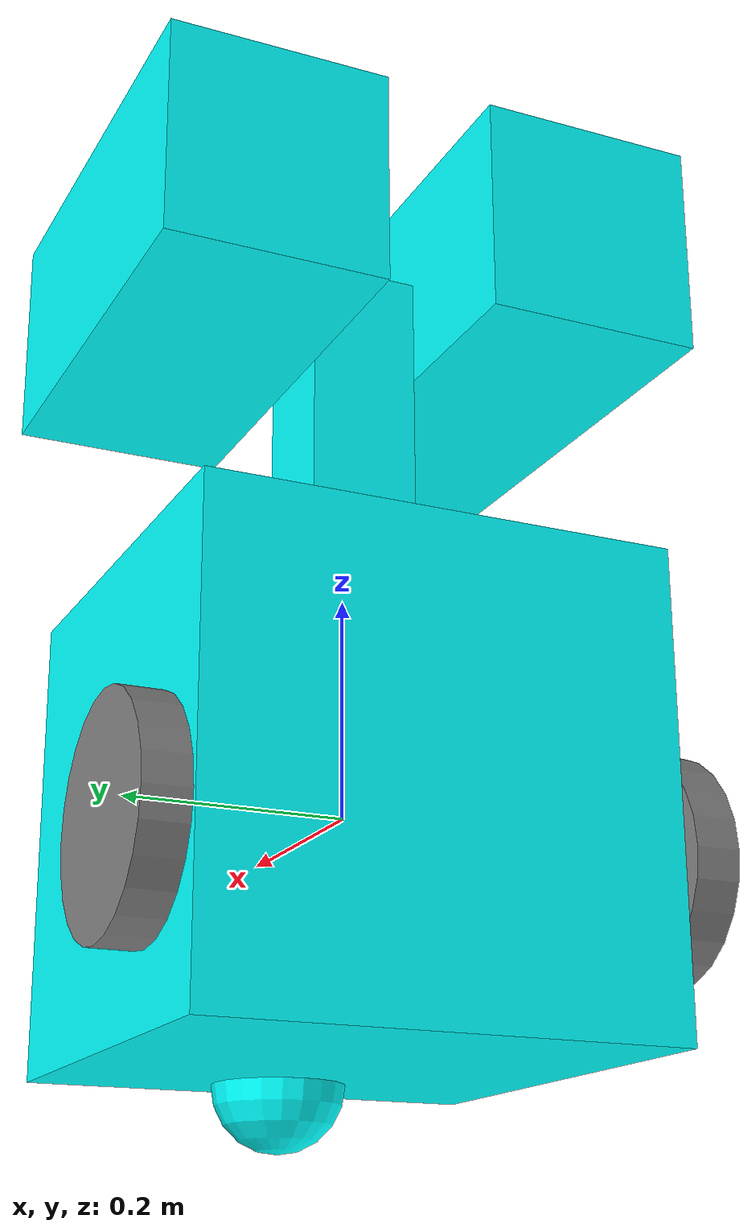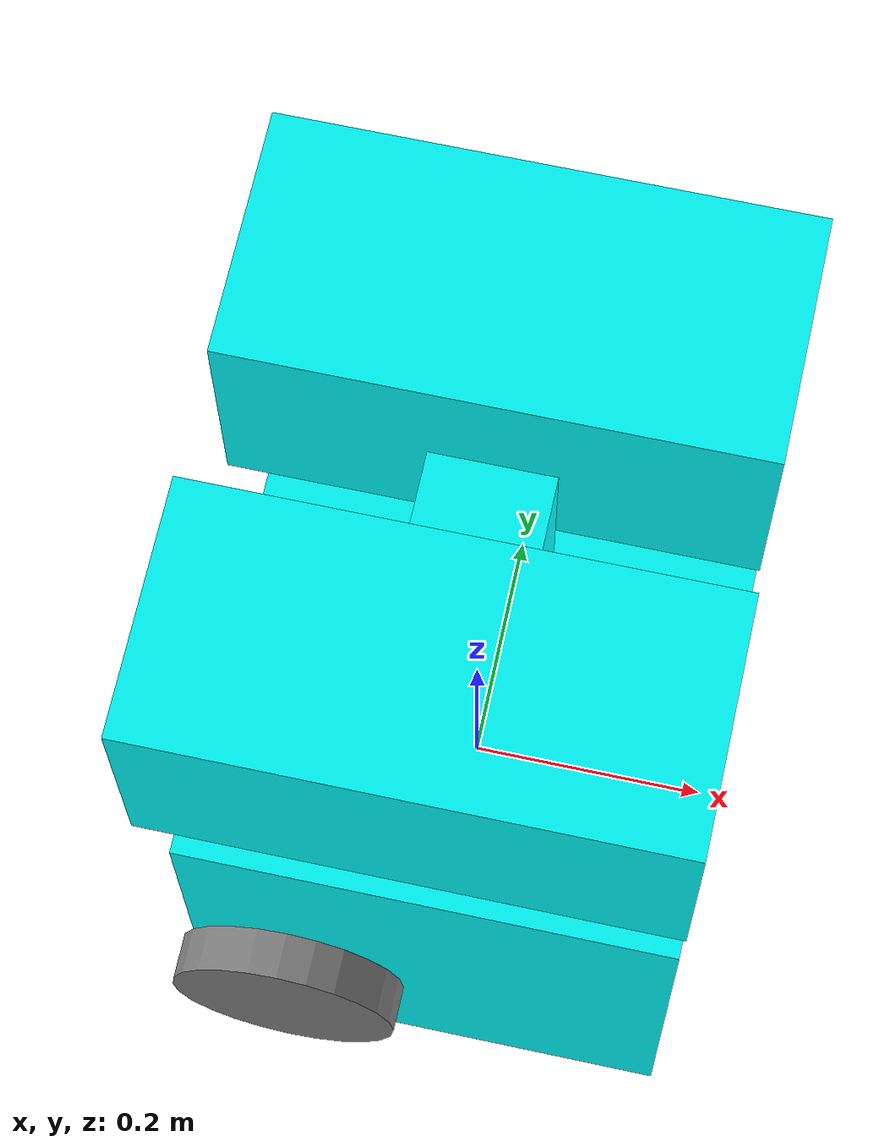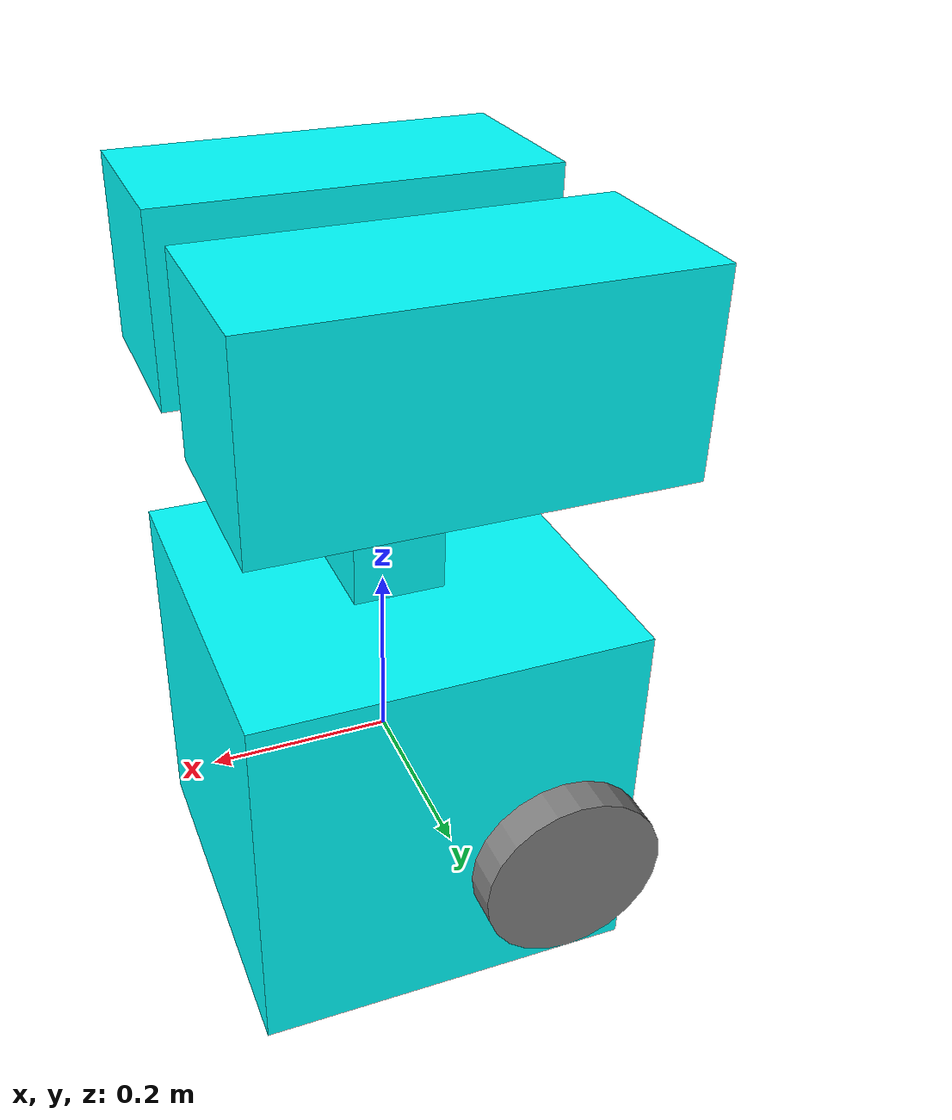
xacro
<?xml version="1.0"?>
<robot name="sam_bot" xmlns:xacro="http://ros.org/wiki/xacro">

  <!-- Define robot constants -->
  <xacro:property name="base_width" value="0.42"/>
  <xacro:property name="base_length" value="0.42"/>
  <xacro:property name="base_height" value="0.42"/>

  <xacro:property name="eyes_width" value="0.2"/>
  <xacro:property name="eyes_length" value="0.42"/>
  <xacro:property name="eyes_height" value="0.2"/>

  <xacro:property name="neck_width" value="0.1"/>
  <xacro:property name="neck_length" value="0.1"/>
  <xacro:property name="neck_height" value="0.3"/>

  <xacro:property name="pi" value="3.1415926535897931"/>

  <xacro:property name="wheel_radius" value="0.10"/>
  <xacro:property name="wheel_width" value="0.04"/>
  <xacro:property name="wheel_ygap" value="0.025"/>
  <xacro:property name="wheel_zoff" value="0.05"/>
  <xacro:property name="wheel_xoff" value="0.12"/>

  <xacro:property name="caster_xoff" value="0.14"/>

  <!-- Define inertial property macros -->
  <xacro:macro name="box_inertia" params="m w h d">
    <inertial>
      <origin xyz="0 0 0" rpy="0 0 0"/>
      <mass value="${m}"/>
      <inertia ixx="${(m/12) * (h*h + d*d)}" ixy="0.0" ixz="0.0" iyy="${(m/12) * (w*w + d*d)}" iyz="0.0" izz="${(m/12) * (w*w + h*h)}"/>
    </inertial>
  </xacro:macro>

  <xacro:macro name="cylinder_inertia" params="m r h">
    <inertial>
      <origin xyz="0 0 0" rpy="0 0 0"/>
      <mass value="${m}"/>
      <inertia ixx="${(m/12) * (3*r*r + h*h)}" ixy="0.0" ixz="0.0" iyy="${(m/12) * (3*r*r + h*h)}" iyz="0.0" izz="${(m/2) * r*r}"/>
    </inertial>
  </xacro:macro>

  <xacro:macro name="sphere_inertia" params="m r">
    <inertial>
      <mass value="${m}"/>
      <inertia ixx="${(2/5) * m * r*r}" ixy="0.0" ixz="0.0" iyy="${(2/5) * m * r*r}" iyz="0.0" izz="${(2/5) * m * r*r}"/>
    </inertial>
  </xacro:macro>

  <!-- Robot Footprint -->
  <link name="base_footprint">
    <inertial>
      <mass value="0.001"/>
      <inertia ixx="0.001" ixy="0.0" ixz="0.0" iyy="0.001" iyz="0.0" izz="0.001"/>
    </inertial>
  </link>

  <!-- Robot Base -->
  <link name="base_link">
    <visual>
      <geometry>
        <box size="${base_length} ${base_width} ${base_height}"/>
      </geometry>
      <material name="Cyan">
        <color rgba="0 1.0 1.0 1.0"/>
      </material>
    </visual>
    <collision>
      <geometry>
        <box size="${base_length} ${base_width} ${base_height}"/>
      </geometry>
    </collision>
    <xacro:box_inertia m="15" w="${base_width}" h="${base_height}" d="${base_length}"/>
  </link>

  <!-- Robot Neck -->
  <link name="neck_link">
    <visual>
      <geometry>
        <box size="${neck_length} ${neck_width} ${neck_height}"/>
      </geometry>
      <material name="Cyan">
        <color rgba="0 1.0 1.0 1.0"/>
      </material>
    </visual>
    <collision>
      <geometry>
        <box size="${neck_length} ${neck_width} ${neck_height}"/>
      </geometry>
    </collision>
    <xacro:box_inertia m="15" w="${neck_width}" h="${neck_height}" d="${neck_length}"/>
  </link>

  <!-- Robot Eyes Left -->
  <link name="eyes_left_link">
    <visual>
      <geometry>
        <box size="${eyes_length} ${eyes_width} ${eyes_height}"/>
      </geometry>
      <material name="Cyan">
        <color rgba="0 1.0 1.0 1.0"/>
      </material>
    </visual>
    <collision>
      <geometry>
        <box size="${eyes_length} ${eyes_width} ${eyes_height}"/>
      </geometry>
    </collision>
    <xacro:box_inertia m="15" w="${eyes_width}" h="${eyes_height}" d="${eyes_length}"/>
  </link>

  <!-- Robot Eyes Right -->
  <link name="eyes_right_link">
    <visual>
      <geometry>
        <box size="${eyes_length} ${eyes_width} ${eyes_height}"/>
      </geometry>
      <material name="Cyan">
        <color rgba="0 1.0 1.0 1.0"/>
      </material>
    </visual>
    <collision>
      <geometry>
        <box size="${eyes_length} ${eyes_width} ${eyes_height}"/>
      </geometry>
    </collision>
    <xacro:box_inertia m="15" w="${eyes_width}" h="${eyes_height}" d="${eyes_length}"/>
  </link>

  <!-- Joints hierarchy -->
  <joint name="base_to_footprint_joint" type="fixed">
    <parent link="base_link"/>
    <child link="base_footprint"/>
    <origin xyz="0.0 0.0 ${-(wheel_radius+wheel_zoff)}" rpy="0 0 0"/>
  </joint>

  <joint name="base_to_neck_joint" type="fixed">
    <parent link="base_link"/>
    <child link="neck_link"/>
    <origin xyz="0.0 0.0 ${base_height/2 + neck_height/2}" rpy="0 0 0"/>
  </joint>

  <joint name="neck_to_eyes_left_joint" type="fixed">
    <parent link="neck_link"/>
    <child link="eyes_left_link"/>
    <origin xyz="0.0 ${eyes_width/2 + neck_width/2} ${neck_height/2}" rpy="0 0 0"/>
  </joint>

  <joint name="neck_to_eyes_right_joint" type="fixed">
    <parent link="neck_link"/>
    <child link="eyes_right_link"/>
    <origin xyz="0.0 ${-(eyes_width/2 + neck_width/2)} ${neck_height/2}" rpy="0 0 0"/>
  </joint>

  <!-- Wheels -->
  <xacro:macro name="wheel" params="prefix x_reflect y_reflect">
    <link name="${prefix}_link">
      <visual>
        <origin xyz="0 0 0" rpy="${pi/2} 0 0"/>
        <geometry>
          <cylinder radius="${wheel_radius}" length="${wheel_width}"/>
        </geometry>
        <material name="Gray">
          <color rgba="0.5 0.5 0.5 1.0"/>
        </material>
      </visual>
      <collision>
        <origin xyz="0 0 0" rpy="${pi/2} 0 0"/>
        <geometry>
          <cylinder radius="${wheel_radius}" length="${wheel_width}"/>
        </geometry>
      </collision>
      <xacro:cylinder_inertia m="0.5" r="${wheel_radius}" h="${wheel_width}"/>
    </link>

    <joint name="${prefix}_joint" type="continuous">
      <parent link="base_link"/>
      <child link="${prefix}_link"/>
      <origin xyz="${x_reflect*wheel_xoff} ${y_reflect*(base_width/2+wheel_ygap)} ${-wheel_zoff}" rpy="0 0 0"/>
      <axis xyz="0 1 0"/>
    </joint>
  </xacro:macro>

  <xacro:wheel prefix="drivewhl_l" x_reflect="-1" y_reflect="1"/>
  <xacro:wheel prefix="drivewhl_r" x_reflect="-1" y_reflect="-1"/>

  <!-- Caster Wheel -->
  <link name="front_caster">
    <visual>
      <geometry>
        <sphere radius="${(wheel_radius+wheel_zoff-(base_height/2))}"/>
      </geometry>
      <material name="Cyan">
        <color rgba="0 1.0 1.0 1.0"/>
      </material>
    </visual>
    <collision>
      <geometry>
        <sphere radius="${(wheel_radius+wheel_zoff-(base_height/2))}"/>
      </geometry>
    </collision>
    <xacro:sphere_inertia m="0.5" r="${(wheel_radius+wheel_zoff-(base_height/2))}"/>
  </link>

  <joint name="caster_joint" type="fixed">
    <parent link="base_link"/>
    <child link="front_caster"/>
    <origin xyz="${caster_xoff} 0.0 ${-(base_height/2)}" rpy="0 0 0"/>
  </joint>

</robot>
